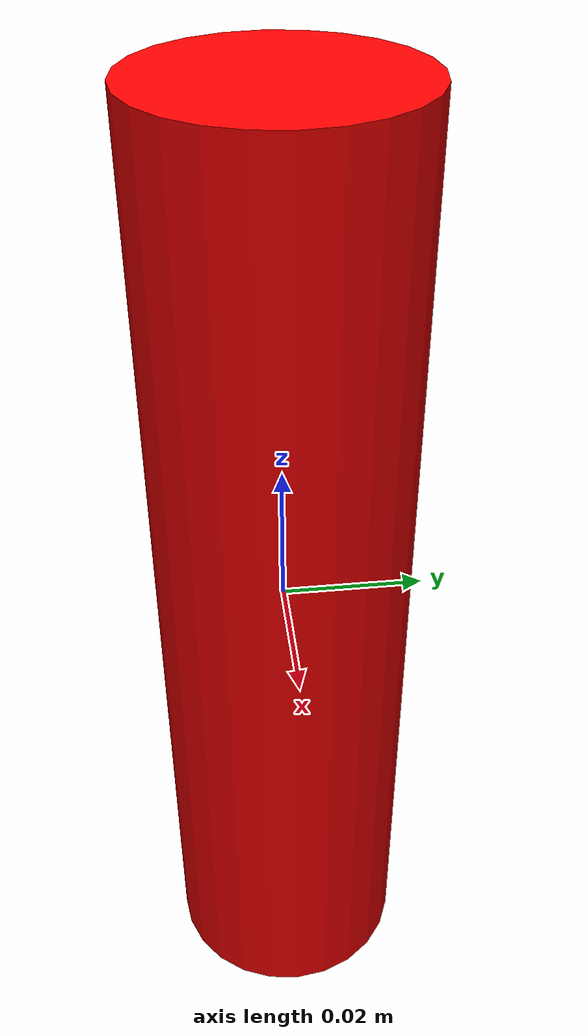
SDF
<?xml version="1.0" ?>
<sdf version="1.6">
  <model name="red_cylinder">
    <static>false</static>
    <link name="link">
      <inertial>
        <mass>0.100</mass>
        <inertia>
          <ixx>0.00102893</ixx>
          <ixy>0</ixy>
          <ixz>0</ixz>
          <iyy>0.00102893</iyy>
          <iyz>0</iyz>
          <izz>0.0000162</izz>
        </inertia>
      </inertial>
      <collision name="collision">
        <geometry>
          <cylinder>
            <radius>0.018</radius>
            <length>0.14</length>
          </cylinder>
        </geometry>
        <surface>
          <friction>
            <ode>
              <mu>5.0</mu>
              <mu2>5.0</mu2>
              <fdir1>0 0 1</fdir1>
              <slip1>0.0001</slip1>
              <slip2>0.0001</slip2>
            </ode>
            <torsional>
              <coefficient>0.1</coefficient>
              <surface_radius>0.015</surface_radius>
              <use_patch_radius>true</use_patch_radius>
            </torsional>
          </friction>
          <contact>
            <ode>
              <kp>1e5</kp>
              <kd>10</kd>
              <max_vel>0.1</max_vel>
              <min_depth>0.001</min_depth>
              <soft_cfm>0.01</soft_cfm>
              <soft_erp>0.2</soft_erp>
            </ode>
          </contact>
          <bounce>
            <restitution_coefficient>0.2</restitution_coefficient>
            <threshold>0.01</threshold>
          </bounce>
        </surface>
      </collision>
      <visual name="visual">
        <geometry>
          <cylinder>
            <radius>0.018</radius>
            <length>0.14</length>
          </cylinder>
        </geometry>
        <material>
          <ambient>1.0 0.0 0.0 1</ambient>
          <diffuse>1.0 0.0 0.0 1</diffuse>
          <specular>0.5 0.5 0.5 1</specular>
          <emissive>0.1 0 0 1</emissive>
        </material>
      </visual>
    </link>
  </model>
</sdf>
